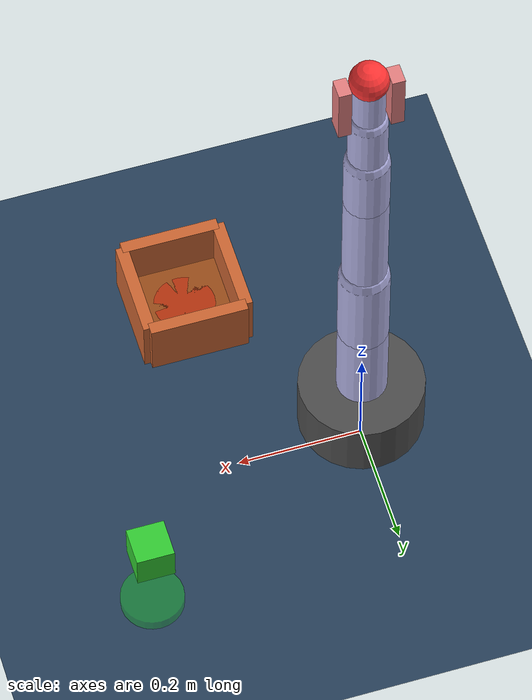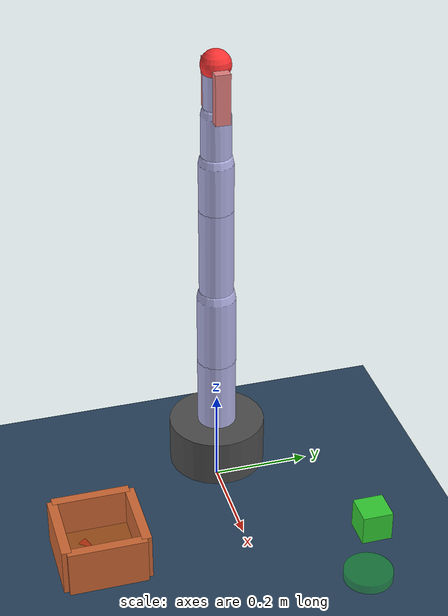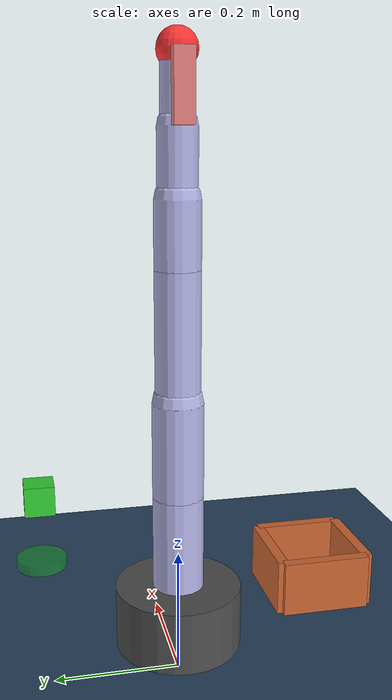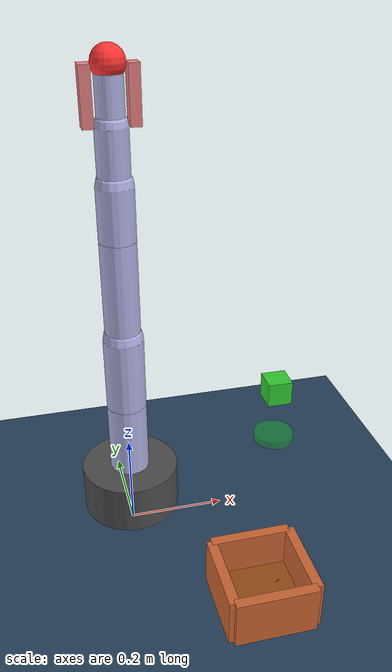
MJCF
<mujoco model="grasping_scene">
  <compiler angle="degree" coordinate="local"/>

  <option timestep="0.002" gravity="0 0 -9.81"/>

  <visual>
    <global offwidth="1280" offheight="720"/>
    <quality shadowsize="4096"/>
  </visual>

  <asset>
    <texture name="grid" type="2d" builtin="checker" width="512" height="512"
             rgb1=".1 .2 .3" rgb2=".2 .3 .4"/>
    <material name="grid" texture="grid" texrepeat="1 1" texuniform="true"
              reflectance=".2"/>
    <material name="arm_material" rgba="0.7 0.7 0.9 1"/>
    <material name="gripper_material" rgba="0.9 0.5 0.5 1"/>
    <material name="cube_material" rgba="0.2 0.8 0.2 1"/>
    <material name="box_material" rgba="0.8 0.4 0.2 1"/>
    <material name="box_floor" rgba="0.6 0.3 0.1 1"/>
  </asset>

  <worldbody>
    <light pos="0 0 3" dir="0 0 -1" diffuse="1 1 1"/>
    <geom name="floor" type="plane" size="2 2 0.1" material="grid"/>

    <!-- Robot Base -->
    <body name="base" pos="0 0 0.1">
      <geom name="base" type="cylinder" size="0.1 0.05" rgba="0.3 0.3 0.3 1"/>

      <!-- Shoulder rotation joint -->
      <body name="link1_base" pos="0 0 0.05">
        <joint name="shoulder_rotate" type="hinge" axis="0 0 1" range="-180 180" damping="1"/>
        <geom name="link1_base" type="capsule" fromto="0 0 0 0 0 0.15" size="0.04" material="arm_material"/>

        <!-- Shoulder pitch joint (bend up/down) -->
        <body name="link1" pos="0 0 0.15">
          <joint name="shoulder_pitch" type="hinge" axis="0 1 0" range="-90 90" damping="0.8"/>
          <geom name="link1" type="capsule" fromto="0 0 0 0 0 0.15" size="0.04" material="arm_material"/>

          <!-- Elbow joint -->
          <body name="link2" pos="0 0 0.15">
            <joint name="elbow" type="hinge" axis="0 1 0" range="-150 150" damping="1"/>
            <geom name="link2" type="capsule" fromto="0 0 0 0 0 0.2" size="0.035" material="arm_material"/>

            <!-- Elbow roll joint (bend side-to-side) -->
            <body name="link2_roll" pos="0 0 0.2">
              <joint name="elbow_roll" type="hinge" axis="1 0 0" range="-45 45" damping="0.6"/>
              <geom name="link2_roll" type="capsule" fromto="0 0 0 0 0 0.1" size="0.035" material="arm_material"/>

              <!-- Wrist joint (twist) -->
              <body name="link3" pos="0 0 0.1">
                <joint name="wrist_twist" type="hinge" axis="0 0 1" range="-180 180" damping="0.8"/>
                <geom name="link3" type="capsule" fromto="0 0 0 0 0 0.1" size="0.03" material="arm_material"/>

                <!-- Wrist pitch joint (bend) -->
                <body name="link4" pos="0 0 0.1">
                  <joint name="wrist_pitch" type="hinge" axis="0 1 0" range="-90 90" damping="0.6"/>
                  <geom name="link4" type="capsule" fromto="0 0 0 0 0 0.1" size="0.025" material="arm_material"/>

                  <!-- End effector -->
                  <body name="end_effector" pos="0 0 0.1">
            <geom name="ee_sphere" type="sphere" size="0.03" rgba="1 0.2 0.2 1"/>

            <!-- Simple gripper fingers -->
            <body name="finger_left" pos="0.03 0 0">
              <joint name="gripper_left" type="slide" axis="1 0 0" range="0 0.04" damping="0.1"/>
              <geom name="finger_left" type="box" size="0.01 0.015 0.05"
                    material="gripper_material" pos="0.01 0 -0.05"/>
            </body>

            <body name="finger_right" pos="-0.03 0 0">
              <joint name="gripper_right" type="slide" axis="-1 0 0" range="0 0.04" damping="0.1"/>
              <geom name="finger_right" type="box" size="0.01 0.015 0.05"
                    material="gripper_material" pos="-0.01 0 -0.05"/>
            </body>
                  </body>
                </body>
              </body>
            </body>
          </body>
        </body>
      </body>
    </body>

    <!-- Cube to grasp (initial position) -->
    <body name="cube" pos="0.4 0.2 0.15">
      <geom name="cube" type="box" size="0.03 0.03 0.03"
            material="cube_material" mass="0.1"/>
    </body>

    <!-- Target box container (goal position) -->
    <body name="box_container" pos="0.2 -0.3 0">
      <!-- Box floor -->
      <geom name="box_floor" type="box" size="0.08 0.08 0.01"
            pos="0 0 0.01" material="box_floor" mass="0.5"/>

      <!-- Box walls -->
      <geom name="box_wall_front" type="box" size="0.08 0.01 0.05"
            pos="0 0.08 0.05" material="box_material" mass="0.1"/>
      <geom name="box_wall_back" type="box" size="0.08 0.01 0.05"
            pos="0 -0.08 0.05" material="box_material" mass="0.1"/>
      <geom name="box_wall_left" type="box" size="0.01 0.08 0.05"
            pos="0.08 0 0.05" material="box_material" mass="0.1"/>
      <geom name="box_wall_right" type="box" size="0.01 0.08 0.05"
            pos="-0.08 0 0.05" material="box_material" mass="0.1"/>
    </body>

    <!-- Visual markers for task understanding -->
    <geom name="start_marker" type="cylinder" size="0.05 0.01"
          pos="0.4 0.2 0.01" rgba="0 1 0 0.3"/>
    <geom name="goal_marker" type="cylinder" size="0.05 0.01"
          pos="0.2 -0.3 0.01" rgba="1 0 0 0.3"/>
  </worldbody>

  <actuator>
    <motor name="shoulder_rotate_motor" joint="shoulder_rotate" gear="20" ctrllimited="true" ctrlrange="-10 10"/>
    <motor name="shoulder_pitch_motor" joint="shoulder_pitch" gear="18" ctrllimited="true" ctrlrange="-8 8"/>
    <motor name="elbow_motor" joint="elbow" gear="15" ctrllimited="true" ctrlrange="-10 10"/>
    <motor name="elbow_roll_motor" joint="elbow_roll" gear="12" ctrllimited="true" ctrlrange="-6 6"/>
    <motor name="wrist_twist_motor" joint="wrist_twist" gear="12" ctrllimited="true" ctrlrange="-8 8"/>
    <motor name="wrist_pitch_motor" joint="wrist_pitch" gear="10" ctrllimited="true" ctrlrange="-6 6"/>
    <motor name="gripper_left_motor" joint="gripper_left" gear="5" ctrllimited="true" ctrlrange="-2 2"/>
    <motor name="gripper_right_motor" joint="gripper_right" gear="5" ctrllimited="true" ctrlrange="-2 2"/>
  </actuator>

  <sensor>
    <jointpos name="shoulder_rotate_pos" joint="shoulder_rotate"/>
    <jointpos name="shoulder_pitch_pos" joint="shoulder_pitch"/>
    <jointpos name="elbow_pos" joint="elbow"/>
    <jointpos name="elbow_roll_pos" joint="elbow_roll"/>
    <jointpos name="wrist_twist_pos" joint="wrist_twist"/>
    <jointpos name="wrist_pitch_pos" joint="wrist_pitch"/>
    <jointvel name="shoulder_rotate_vel" joint="shoulder_rotate"/>
    <jointvel name="shoulder_pitch_vel" joint="shoulder_pitch"/>
    <jointvel name="elbow_vel" joint="elbow"/>
    <jointvel name="elbow_roll_vel" joint="elbow_roll"/>
    <jointvel name="wrist_twist_vel" joint="wrist_twist"/>
    <jointvel name="wrist_pitch_vel" joint="wrist_pitch"/>
    <framepos name="cube_pos" objtype="body" objname="cube"/>
    <framepos name="end_effector_pos" objtype="body" objname="end_effector"/>
    <framepos name="box_pos" objtype="body" objname="box_container"/>
  </sensor>
</mujoco>
